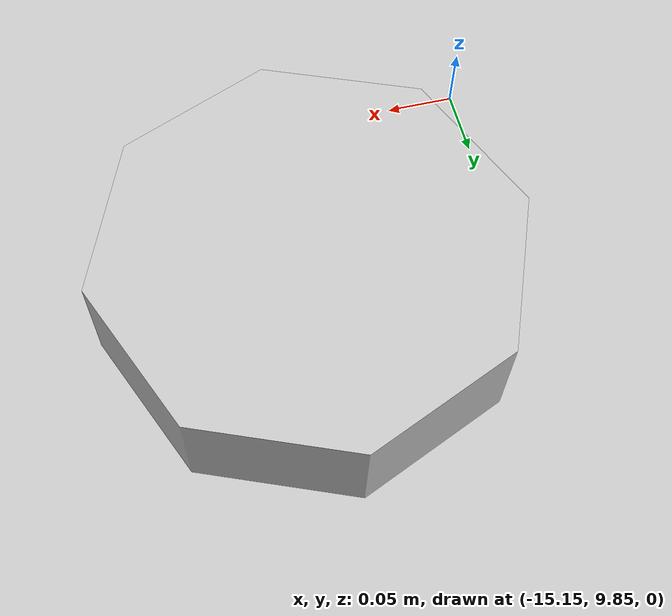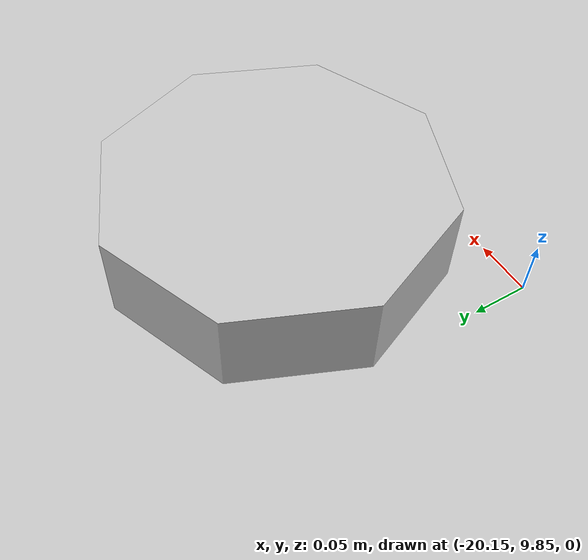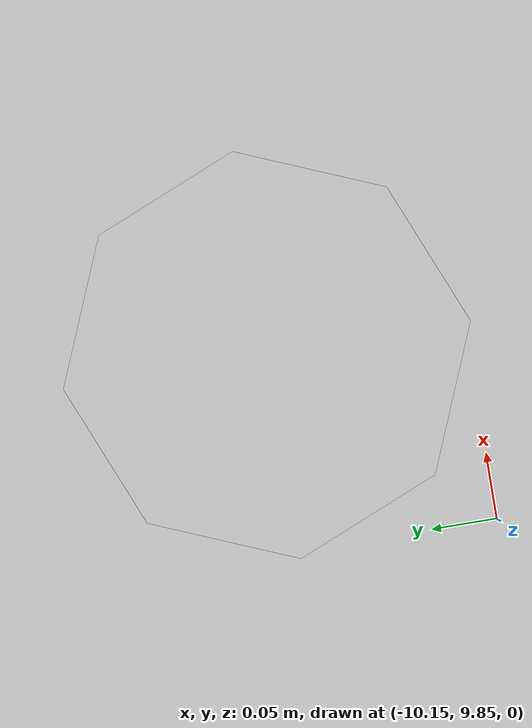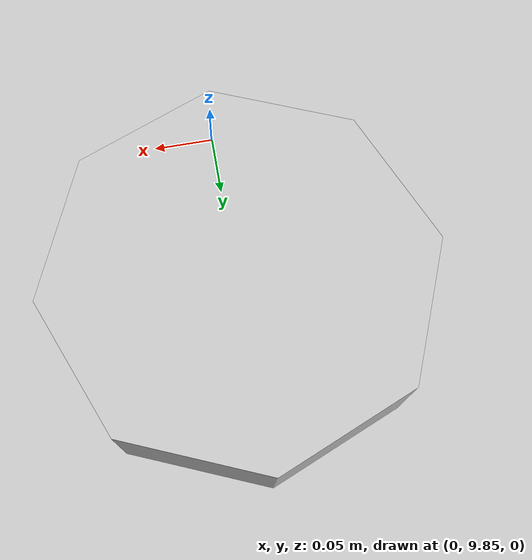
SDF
<?xml version="1.0" ?>
<sdf version="1.5">
  <world name="default">
    <include>
      <uri>model://sun</uri>
    </include>
    <include>
      <uri>model://ground_plane</uri>
    </include>
    <include>
      <uri>model://target</uri>
      <name>target_person0</name>
      <pose>0 10 0 0 0 0</pose>
    </include>
    <include>
      <uri>model://target</uri>
      <name>target_person1</name>
      <pose>-5 10 0 0 0 0</pose>
    </include>
    <include>
      <uri>model://target</uri>
      <name>target_person2</name>
      <pose>-10 10 0 0 0 0</pose>
    </include>
    <include>
      <uri>model://target</uri>
      <name>target_person3</name>
      <pose>-15 10 0 0 0 0</pose>
    </include>
    <include>
      <uri>model://target</uri>
      <name>target_person4</name>
      <pose>-20 10 0 0 0 0</pose>
    </include>
  </world>
</sdf>

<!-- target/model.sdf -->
<sdf version="1.5">

    <model name="target">

        <link name="target_base_link">

            <inertial>
                <pose>0 -0.1 0.95 0 0 0</pose>
                <mass>1000</mass>
                <inertia>
                    <ixx>24.88</ixx>
                    <ixy>0</ixy>
                    <ixz>0</ixz>
                    <iyy>25.73</iyy>
                    <iyz>0</iyz>
                    <izz>2.48</izz>
                </inertia>
            </inertial>

            <collision name="bottom">
                <pose>0 0 0.01 0 0 1.57</pose>
                <geometry>
                    <box>
                        <size>0.5 0.35 0.02</size>
                    </box>
                </geometry>
                <surface>
                    <friction>
                        <ode>
                            <mu>0.</mu>
                            <mu2>0.</mu2>
                        </ode>
                    </friction>
                </surface>
            </collision>

            <collision name="person">
                <pose>0 0 0.02 0 0 1.57</pose>
                <geometry>
                    <mesh>
                        <uri>model://target/meshes/target.dae</uri>
                    </mesh>
                </geometry>
            </collision>

            <visual name="visual">
                <pose>0 0 0.02 0 0 1.57</pose>
                <geometry>
                    <mesh>
                        <uri>model://target/meshes/target.dae</uri>
                    </mesh>
                </geometry>
            </visual>

        </link>

    </model>

</sdf>
